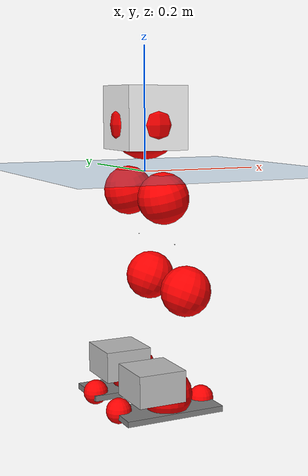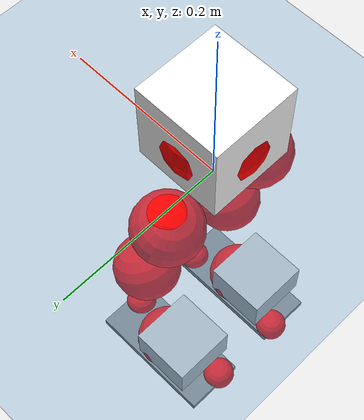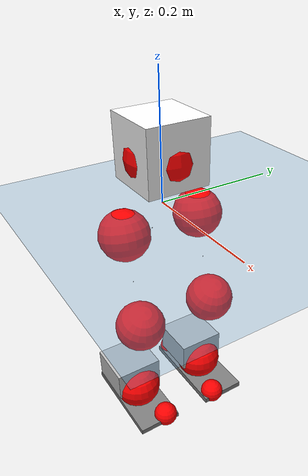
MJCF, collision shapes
<mujoco model="pi_12dof_release_v1">
  <compiler angle="radian" assetdir="assets" balanceinertia="true" inertiafromgeom="false"/>

  <option timestep="0.005" density="1.2" viscosity="2e-05"/>

  <size nkey="1"/>

  <visual>
    <quality shadowsize="8192"/>
    <map shadowclip="0.5"/>
  </visual>

  <default>
    <default class="/">
      <joint armature="0.01" damping="0.01" frictionloss="0.01"/>
      <geom contype="0" conaffinity="0" group="1" solref="-1000 -80"/>
      <site size="0.01 0.005 0.005" group="5"/>
      <general forcelimited="true" biastype="affine" gainprm="20" biasprm="0 -20 -0.5"/>
      <default class="foot">
        <geom size="0.0845 0.036 0.005" type="box" condim="6" group="4" priority="1" friction="0.9 0.2 0.2" solimp="0.015 1 0.005"/>
      </default>
      <default class="reward_collision_sphere">
        <geom group="5" rgba="1 0 0 1"/>
      </default>
    </default>
  </default>

  <asset>
    <texture type="skybox" colorspace="auto" name="//unnamed_texture_0" builtin="gradient" rgb1="0.95 0.95 0.95" rgb2="0.95 0.95 0.95" width="100" height="600"/>
    <texture type="2d" colorspace="auto" name="texplane" builtin="checker" rgb1="0.345 0.575 0.748" rgb2="0.345 0.575 0.748" markrgb="1 1 1" width="512" height="512"/>
    <material name="MatPlane" class="/" texture="texplane" texuniform="true" texrepeat="2 2" specular="0.9"/>
    <mesh name="baselink_1" class="/" file="baselink_1.STL"/>
    <mesh name="r_hip_pitch_link" class="/" file="r_hip_pitch_link.STL"/>
    <mesh name="r_hip_roll_link" class="/" file="r_hip_roll_link.STL"/>
    <mesh name="r_thigh_link" class="/" file="r_thigh_link.STL"/>
    <mesh name="r_calf_link" class="/" file="r_calf_link.STL"/>
    <mesh name="r_ankle_pitch_link" class="/" file="r_ankle_pitch_link.STL"/>
    <mesh name="r_ankle_roll_link" class="/" file="r_ankle_roll_link.STL"/>
    <mesh name="l_hip_pitch_link" class="/" file="l_hip_pitch_link.STL"/>
    <mesh name="l_hip_roll_link" class="/" file="l_hip_roll_link.STL"/>
    <mesh name="l_thigh_link" class="/" file="l_thigh_link.STL"/>
    <mesh name="l_calf_link" class="/" file="l_calf_link.STL"/>
    <mesh name="l_ankle_pitch_link" class="/" file="l_ankle_pitch_link.STL"/>
    <mesh name="l_ankle_roll_link" class="/" file="l_ankle_roll_link.STL"/>
  </asset>

  <worldbody>
    <geom name="floor" class="/" size="100 100 0.125" type="plane" group="0" material="MatPlane"/>
    <light name="toplight_shadow" class="/" pos="0 0 5" dir="0.0990148 0.0990148 -0.990148" type="directional" ambient="0.04 0.04 0.04" diffuse="0.55 0.55 0.55" specular="0.12 0.12 0.12"/>
    <light name="toplight_fill" class="/" pos="0 0 5" dir="0.0990148 0.0990148 -0.990148" type="directional" castshadow="false" ambient="0.04 0.04 0.04" diffuse="0.3 0.3 0.3" specular="0.08 0.08 0.08"/>
    <body name="trunk" pos="0.000478156 7.4409e-05 -0.0020711" quat="1 0.000664731 -9.49326e-05 -0.000576079">
      <inertial pos="0.00249214 -2.30279e-05 0.0442334" quat="0.700189 0.013101 0.00648354 0.713808" mass="2.28801" diaginertia="0.0154195 0.00395944 0.0069461"/>
      <joint name="//unnamed_joint_0" type="free"/>
      <geom name="//unnamed_geom_1" class="/" type="mesh" density="0" rgba="1 1 1 1" mesh="baselink_1"/>
      <geom name="//unnamed_geom_2" class="/" size="0.0505995 0.0505995 0.0505995" pos="0 0 0.0881434" type="box" rgba="1 1 1 1"/>
      <geom name="//unnamed_geom_3" class="reward_collision_sphere" size="0.0556594" pos="0 0 0.0771255"/>
      <site name="imu" class="/" pos="-0.000202844 -0.00208053 -0.00383408" size="0.0101199"/>
      <camera name="track" class="/" pos="0 -1.68685 0" quat="0.707107 0.707107 0 0" mode="trackcom"/>
      <camera name="ego_camera" class="/" pos="0.0818065 0 0.198323" quat="-0.5 -0.5 0.5 0.5"/>
      <body name="r_hip_pitch_link" pos="0.000626244 -0.0199423 -0.0355897" quat="0.992197 1.49256e-05 -0.124684 2.05124e-05">
        <inertial pos="-0.000178658 -0.04742 -0.00161438" quat="-0.0215108 0.69972 -0.0327723 0.71334" mass="0.386534" diaginertia="0.000169604 4.2509e-05 0.00013575"/>
        <joint name="r_hip_pitch_joint" class="/" pos="0 0 0" axis="-0.00394002 -0.999992 0.000507303" stiffness="0.0027236" range="-1.75696 1.26351" armature="0.0101294" damping="0.0171797" frictionloss="0.010231"/>
        <geom name="//unnamed_geom_4" class="/" type="mesh" density="0" rgba="0.75294 0.75294 0.75294 1" mesh="r_hip_pitch_link"/>
        <geom name="//unnamed_geom_5" class="/" size="0.000505995 0.000505995 0.000505995" type="box" rgba="0.75294 0.75294 0.75294 1"/>
        <body name="r_hip_roll_link" pos="-0.00115509 -0.0472733 0.00119087" quat="1 0.000155655 -1.37172e-05 -0.000190398">
          <inertial pos="-0.000323471 -0.000191148 -0.0666468" quat="0.703958 -0.0813933 -0.0855946 0.700352" mass="0.393909" diaginertia="0.000506238 0.000116662 0.000202605"/>
          <joint name="r_hip_roll_joint" class="/" pos="0 0 0" axis="-0.999999 -0.000658535 -0.00137484" range="-0.12066 0.491487" armature="0.00899029" damping="0.00749153" frictionloss="0.00997188"/>
          <geom name="//unnamed_geom_6" class="/" type="mesh" density="0" rgba="0.75294 0.75294 0.75294 1" mesh="r_hip_roll_link"/>
          <geom name="//unnamed_geom_7" class="/" size="0.000505995 0.000505995 0.000505995" type="box" rgba="0.75294 0.75294 0.75294 1"/>
          <geom name="//unnamed_geom_8" class="reward_collision_sphere" size="0.0404796"/>
          <body name="r_thigh_link" pos="0.000999432 -0.000288535 -0.0761622" quat="1 7.7196e-05 -3.39631e-05 -0.000271943">
            <inertial pos="-0.00187063 -0.00107923 -0.0518257" quat="0.73698 0.675914 -0.000244069 0.000151414" mass="0.116732" diaginertia="0.000189097 4.07206e-05 9.41269e-05"/>
            <joint name="r_thigh_joint" class="/" pos="0 0 0" axis="-0.000274592 0.000119845 -1" range="-0.286206 0.61506" armature="0.0091052" damping="0.00588296" frictionloss="0.0100377"/>
            <geom name="//unnamed_geom_9" class="/" type="mesh" density="0" rgba="0.75294 0.75294 0.75294 1" mesh="r_thigh_link"/>
            <geom name="//unnamed_geom_10" class="/" size="0.000505995 0.000505995 0.000505995" type="box" rgba="0.75294 0.75294 0.75294 1"/>
            <body name="r_calf_link" pos="-0.000954932 -0.00172799 -0.0781261" quat="0.947343 0.000302781 0.320221 -0.000471861">
              <inertial pos="0.00065483 -0.000804657 -0.0766687" quat="0.999966 0.00674511 -0.00350392 0.00311896" mass="0.875169" diaginertia="0.00550205 0.00151582 0.00028791"/>
              <joint name="r_calf_joint" class="/" pos="0 0 0" axis="-0.00337236 -0.99999 0.00307111" stiffness="0.00187405" range="-1.65064 0.635156" armature="0.0100761" damping="0.00716865" frictionloss="0.0103834"/>
              <geom name="//unnamed_geom_11" class="/" type="mesh" density="0" rgba="0.75294 0.75294 0.75294 1" mesh="r_calf_link"/>
              <geom name="//unnamed_geom_12" class="/" size="0.000505995 0.000505995 0.000505995" type="box" rgba="0.75294 0.75294 0.75294 1"/>
              <geom name="//unnamed_geom_13" class="reward_collision_sphere" size="0.0404796"/>
              <body name="r_ankle_pitch_link" pos="0.000828893 0.00093194 -0.153045" quat="0.980065 -0.000188477 -0.198678 -0.000267062">
                <inertial pos="0.00609113 0.00309095 0.000768614" quat="0.000248547 0.709071 -0.000808041 0.705136" mass="0.184248" diaginertia="0.000475651 9.3712e-05 0.000192568"/>
                <joint name="r_ankle_pitch_joint" class="/" pos="0 0 0" axis="-0.000214602 -0.999997 -0.00255852" stiffness="0.000656686" range="-1.28604 0.502223" armature="0.0106304" damping="0.0211977" frictionloss="0.0102499"/>
                <geom name="//unnamed_geom_14" class="/" type="mesh" density="0" rgba="0.75294 0.75294 0.75294 1" mesh="r_ankle_pitch_link"/>
                <geom name="//unnamed_geom_15" class="/" size="0.0394676 0.0404796 0.0252997" type="box" rgba="0.75294 0.75294 0.75294 1"/>
                <body name="r_ankle_roll_link" pos="0.0815573 0.00105125 2.2436e-05" quat="1 -1.35545e-05 8.23832e-05 0.000107458">
                  <inertial pos="-0.0248754 -0.00148939 -0.0153337" quat="0.563777 0.426716 0.42608 0.56438" mass="0.524559" diaginertia="0.00170353 0.000438417 0.00045102"/>
                  <joint name="r_ankle_roll_joint" class="/" pos="0 0 0" axis="-0.999997 0.00127309 0.0020459" range="-0.19575 0.144255" armature="0.00941964" damping="0.0113181" frictionloss="0.00920349"/>
                  <geom name="//unnamed_geom_16" class="/" type="mesh" density="0" rgba="0.75294 0.75294 0.75294 1" mesh="r_ankle_roll_link"/>
                  <geom name="//unnamed_geom_17" class="/" type="mesh" rgba="0.75294 0.75294 0.75294 1" mesh="r_ankle_roll_link"/>
                  <geom name="right_foot" class="foot" size="0.0827654 0.0366322 0.00457297" pos="-0.0556284 0 -0.0484789"/>
                  <geom name="//unnamed_geom_19" class="reward_collision_sphere" size="0.0404796" pos="-0.0545376 0 -0.0220359"/>
                  <geom name="//unnamed_geom_20" class="reward_collision_sphere" size="0.0202398" pos="0.0163613 0.0168685 -0.0440717"/>
                  <geom name="//unnamed_geom_21" class="reward_collision_sphere" size="0.0202398" pos="-0.13089 0.0168685 -0.0440717"/>
                  <site name="right_foot" class="foot" pos="-0.0556284 0 -0.0484789" size="0.0101199"/>
                </body>
              </body>
            </body>
          </body>
        </body>
      </body>
      <body name="l_hip_pitch_link" pos="0.000534023 0.0194515 -0.0351092" quat="0.992179 8.40379e-05 -0.124825 -0.000316964">
        <inertial pos="0.00200203 0.043597 -0.00233833" quat="-0.0377053 0.702107 0.030176 0.710432" mass="0.403355" diaginertia="0.000201336 4.45369e-05 0.000162997"/>
        <joint name="l_hip_pitch_joint" class="/" pos="0 0 0" axis="0.000508736 0.99997 -0.00769627" range="-1.28712 1.76735" armature="0.0100956" damping="0" frictionloss="0.00977985"/>
        <geom name="//unnamed_geom_22" class="/" type="mesh" density="0" rgba="0.75294 0.75294 0.75294 1" mesh="l_hip_pitch_link"/>
        <geom name="//unnamed_geom_23" class="/" size="0.000505995 0.000505995 0.000505995" type="box" rgba="0.75294 0.75294 0.75294 1"/>
        <body name="l_hip_roll_link" pos="-0.000805653 0.0457136 0.00204978" quat="1 0.000105341 -7.41878e-05 -0.000125338">
          <inertial pos="0.000789372 -0.000633805 -0.0696599" quat="0.699211 -0.0754479 -0.0777828 0.706655" mass="0.413669" diaginertia="0.000541181 0.000122475 0.000215192"/>
          <joint name="l_hip_roll_joint" class="/" pos="0 0 0" axis="-1 0.00020169 0.000588788" range="-0.4988 0.124723" armature="0.00990345" damping="0.00490545" frictionloss="0.0101512"/>
          <geom name="//unnamed_geom_24" class="/" type="mesh" density="0" rgba="0.75294 0.75294 0.75294 1" mesh="l_hip_roll_link"/>
          <geom name="//unnamed_geom_25" class="/" size="0.000505995 0.000505995 0.000505995" type="box" rgba="0.75294 0.75294 0.75294 1"/>
          <geom name="//unnamed_geom_26" class="reward_collision_sphere" size="0.0404796"/>
          <body name="l_thigh_link" pos="-8.75852e-05 -0.00071013 -0.0769385" quat="1 2.89867e-06 0.000333307 0.000127561">
            <inertial pos="-0.00149261 -0.00172613 -0.054758" quat="0.678946 0.73416 0.00636667 -0.000759518" mass="0.116556" diaginertia="0.000192129 4.06038e-05 9.25051e-05"/>
            <joint name="l_thigh_joint" class="/" pos="0 0 0" axis="-2.15345e-06 0.000313771 -1" range="-0.60053 0.290982" armature="0.0102486" damping="0.0120931" frictionloss="0.011216"/>
            <geom name="//unnamed_geom_27" class="/" type="mesh" density="0" rgba="0.75294 0.75294 0.75294 1" mesh="l_thigh_link"/>
            <geom name="//unnamed_geom_28" class="/" size="0.000505995 0.000505995 0.000505995" type="box" rgba="0.75294 0.75294 0.75294 1"/>
            <body name="l_calf_link" pos="0.00193731 0.000452115 -0.0758187" quat="0.947654 -0.00015875 0.319299 4.74173e-05">
              <inertial pos="-0.000250344 0.00287238 -0.0775219" quat="0.99992 0.00171865 -0.00468273 0.011626" mass="0.840057" diaginertia="0.00570745 0.00152649 0.000288347"/>
              <joint name="l_calf_joint" class="/" pos="0 0 0" axis="0.000587 0.999999 -0.00150258" range="-0.677068 1.68712" armature="0.00987118" damping="0.00716453" frictionloss="0.0100836"/>
              <geom name="//unnamed_geom_29" class="/" type="mesh" density="0" rgba="0.75294 0.75294 0.75294 1" mesh="l_calf_link"/>
              <geom name="//unnamed_geom_30" class="/" size="0.000505995 0.000505995 0.000505995" type="box" rgba="0.75294 0.75294 0.75294 1"/>
              <geom name="//unnamed_geom_31" class="reward_collision_sphere" size="0.0404796"/>
              <body name="l_ankle_pitch_link" pos="0.0017242 -0.000220032 -0.153146" quat="0.9801 1.03982e-05 -0.198503 -0.000110335">
                <inertial pos="0.00447253 -0.000389462 -0.00189571" quat="-0.00225878 0.707108 0.00214026 0.707099" mass="0.179236" diaginertia="0.000487962 9.59604e-05 0.000195633"/>
                <joint name="l_ankle_pitch_joint" class="/" pos="0 0 0" axis="-0.00143592 0.999997 -0.00178654" range="-0.50749 1.31351" armature="0.0106329" damping="0" frictionloss="0.00969944"/>
                <geom name="//unnamed_geom_32" class="/" type="mesh" density="0" rgba="0.75294 0.75294 0.75294 1" mesh="l_ankle_pitch_link"/>
                <geom name="//unnamed_geom_33" class="/" size="0.0394676 0.0404796 0.0252997" type="box" rgba="0.75294 0.75294 0.75294 1"/>
                <body name="l_ankle_roll_link" pos="0.0803706 0.00122842 -0.00138805" quat="0.999999 0.000957688 -0.000587429 0.000102715">
                  <inertial pos="-0.0270163 -0.000237624 -0.0155335" quat="0.566035 0.430793 0.433244 0.553463" mass="0.536056" diaginertia="0.00173603 0.000434844 0.000447988"/>
                  <joint name="l_ankle_roll_joint" class="/" pos="0 0 0" axis="-1 0.000331341 0.000459503" range="-0.147425 0.106883" armature="0.0100433" damping="0.00466127" frictionloss="0.0105326"/>
                  <geom name="//unnamed_geom_34" class="/" type="mesh" density="0" rgba="0.75294 0.75294 0.75294 1" mesh="l_ankle_roll_link"/>
                  <geom name="//unnamed_geom_35" class="/" type="mesh" rgba="0.75294 0.75294 0.75294 1" mesh="l_ankle_roll_link"/>
                  <geom name="left_foot" class="foot" size="0.0846566 0.0385111 0.004874" pos="-0.0556284 0 -0.0484789"/>
                  <geom name="//unnamed_geom_37" class="reward_collision_sphere" size="0.0404796" pos="-0.0545376 0 -0.0220359"/>
                  <geom name="//unnamed_geom_38" class="reward_collision_sphere" size="0.0202398" pos="0.0163613 -0.0168685 -0.0440717"/>
                  <geom name="//unnamed_geom_39" class="reward_collision_sphere" size="0.0202398" pos="-0.13089 -0.0168685 -0.0440717"/>
                  <site name="left_foot" class="foot" pos="-0.0556284 0 -0.0484789" size="0.0101199"/>
                </body>
              </body>
            </body>
          </body>
        </body>
      </body>
    </body>
  </worldbody>

  <contact>
    <pair class="/" geom1="floor" geom2="right_foot" name="//unnamed_contact_1"/>
    <pair class="/" geom1="floor" geom2="left_foot" name="//unnamed_contact_0"/>
  </contact>

  <actuator>
    <general name="r_hip_pitch_joint" class="/" joint="r_hip_pitch_joint" forcerange="-22.3535 22.3535" gainprm="19.1524" biasprm="0 -19.1524 -0.490252"/>
    <general name="r_hip_roll_joint" class="/" joint="r_hip_roll_joint" forcerange="-19.5062 19.5062" gainprm="19.1524" biasprm="0 -19.1524 -0.490252"/>
    <general name="r_thigh_joint" class="/" joint="r_thigh_joint" forcerange="-21.2565 21.2565" gainprm="19.1524" biasprm="0 -19.1524 -0.490252"/>
    <general name="r_calf_joint" class="/" joint="r_calf_joint" forcerange="-23.055 23.055" gainprm="19.1524" biasprm="0 -19.1524 -0.490252"/>
    <general name="r_ankle_pitch_joint" class="/" joint="r_ankle_pitch_joint" forcerange="-21.9926 21.9926" gainprm="19.1524" biasprm="0 -19.1524 -0.490252"/>
    <general name="r_ankle_roll_joint" class="/" joint="r_ankle_roll_joint" forcerange="-19.483 19.483" gainprm="19.1524" biasprm="0 -19.1524 -0.490252"/>
    <general name="l_hip_pitch_joint" class="/" joint="l_hip_pitch_joint" forcerange="-21.4173 21.4173" gainprm="19.1524" biasprm="0 -19.1524 -0.490252"/>
    <general name="l_hip_roll_joint" class="/" joint="l_hip_roll_joint" forcerange="-21.3049 21.3049" gainprm="19.1524" biasprm="0 -19.1524 -0.490252"/>
    <general name="l_thigh_joint" class="/" joint="l_thigh_joint" forcerange="-20.8489 20.8489" gainprm="19.1524" biasprm="0 -19.1524 -0.490252"/>
    <general name="l_calf_joint" class="/" joint="l_calf_joint" forcerange="-21.0552 21.0552" gainprm="19.1524" biasprm="0 -19.1524 -0.490252"/>
    <general name="l_ankle_pitch_joint" class="/" joint="l_ankle_pitch_joint" forcerange="-20.7363 20.7363" gainprm="19.1524" biasprm="0 -19.1524 -0.490252"/>
    <general name="l_ankle_roll_joint" class="/" joint="l_ankle_roll_joint" forcerange="-21.4323 21.4323" gainprm="19.1524" biasprm="0 -19.1524 -0.490252"/>
  </actuator>

  <sensor>
    <gyro site="imu" name="imu_angular_velocity"/>
    <velocimeter site="imu" name="imu_linear_velocity"/>
    <framelinvel objtype="site" objname="left_foot" name="left_foot_global_linear_velocity"/>
    <framelinvel objtype="site" objname="right_foot" name="right_foot_global_linear_velocity"/>
  </sensor>

  <keyframe>
    <key name="home" qpos="0 0 0.291 1 0 0 0 0.4 0 0 -0.8 0.4 0 -0.4 0 0 0.8 -0.4 0"/>
  </keyframe>
</mujoco>
